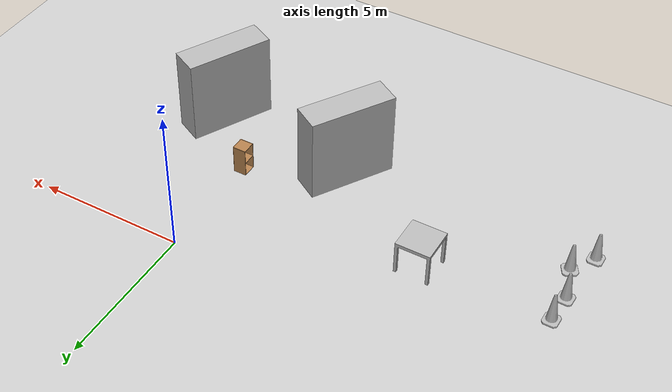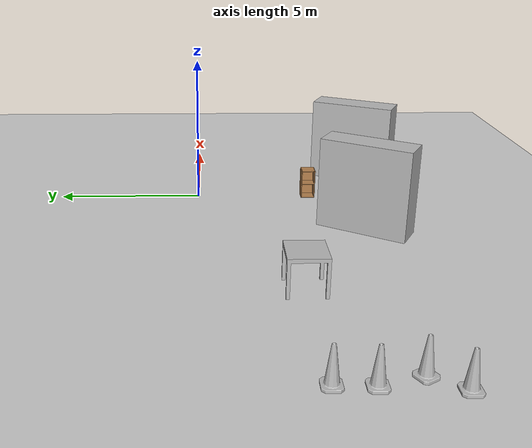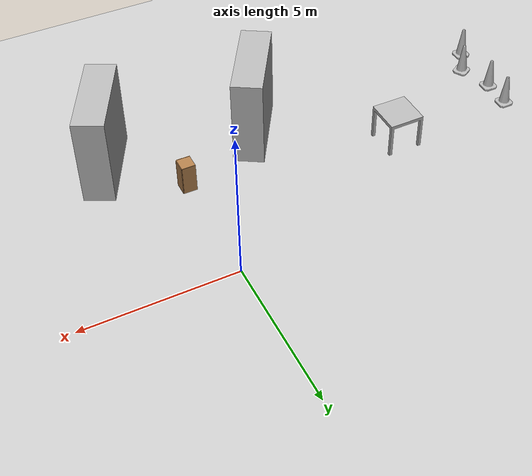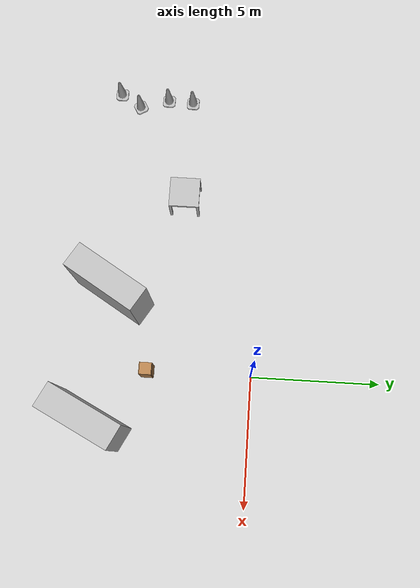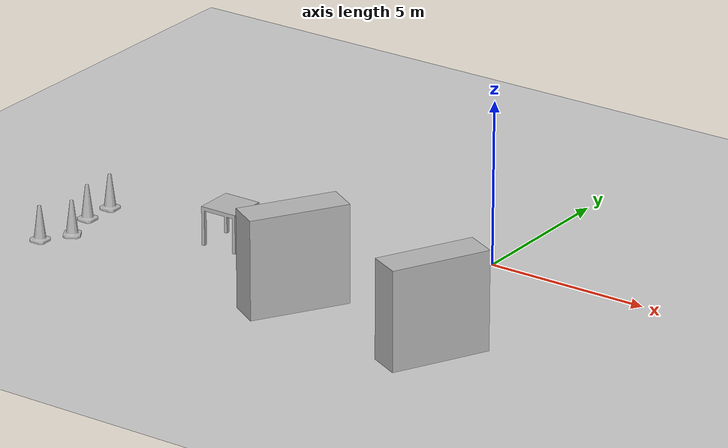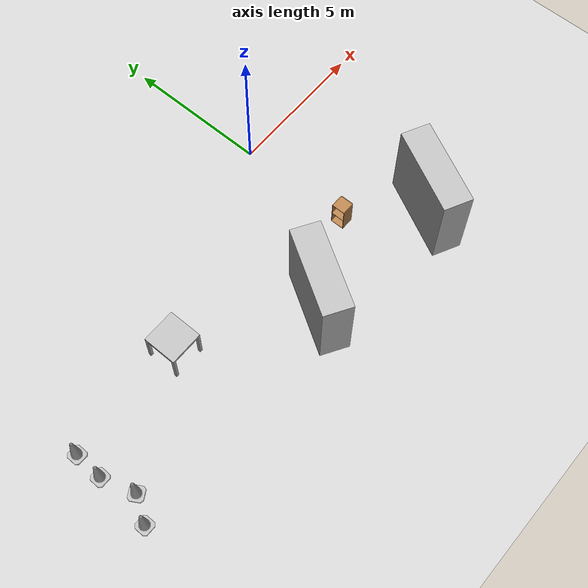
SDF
<sdf version="1.4">
 <world name="default">
  <model name="ground_plane">
   <static>1</static>
   <link name="link">
    <collision name="collision">
     <geometry><plane><normal>0 0 1</normal><size>100 100</size></plane></geometry>
     <surface><friction><ode><mu>100</mu><mu2>50</mu2></ode></friction></surface>
    </collision>
    <visual name="visual">
     <cast_shadows>0</cast_shadows>
     <geometry><plane><normal>0 0 1</normal><size>100 100</size></plane></geometry>
     <material>
      <script><uri>file://media/materials/scripts/gazebo.material</uri><name>Gazebo/Grey</name></script>
     </material>
    </visual>
    <velocity_decay><linear>0</linear><angular>0</angular></velocity_decay>
   </link>
  </model>
  <model name="cabinet">
   <static>1</static>
   <link name="cabinet_bottom_plate">
    <inertial>
     <pose>0 0 -1 0 -0 0</pose>
     <inertia><ixx>2.05</ixx><ixy>0</ixy><ixz>0</ixz><iyy>2.05</iyy><iyz>0</iyz><izz>2.05</izz></inertia>
     <mass>25</mass>
    </inertial>
    <collision name="cabinet_bottom_plate_geom">
     <pose>0 0 0.01 0 -0 0</pose>
     <geometry><box><size>0.45 0.45 0.02</size></box></geometry>
    </collision>
    <visual name="cabinet_bottom_plate_geom_visual">
     <pose>0 0 0.01 0 -0 0</pose>
     <geometry><box><size>0.45 0.45 0.02</size></box></geometry>
     <material>
      <script><uri>file://media/materials/scripts/gazebo.material</uri><name>Gazebo/Wood</name></script>
     </material>
    </visual>
    <collision name="cabinet_bottom_plate_geom_cabinet_back_plate">
     <pose>0.235 0 0.51 0 -0 0</pose>
     <geometry><box><size>0.02 0.45 1.02</size></box></geometry>
    </collision>
    <visual name="cabinet_bottom_plate_geom_cabinet_back_plate_visual">
     <pose>0.235 0 0.51 0 -0 0</pose>
     <geometry><box><size>0.02 0.45 1.02</size></box></geometry>
     <material>
      <script><uri>file://media/materials/scripts/gazebo.material</uri><name>Gazebo/Wood</name></script>
     </material>
    </visual>
    <collision name="cabinet_bottom_plate_geom_cabinet_left_plate">
     <pose>0 0.235 0.51 0 -0 0</pose>
     <geometry><box><size>0.45 0.02 1.02</size></box></geometry>
    </collision>
    <visual name="cabinet_bottom_plate_geom_cabinet_left_plate_visual">
     <pose>0 0.235 0.51 0 -0 0</pose>
     <geometry><box><size>0.45 0.02 1.02</size></box></geometry>
     <material>
      <script><uri>file://media/materials/scripts/gazebo.material</uri><name>Gazebo/Wood</name></script>
     </material>
    </visual>
    <collision name="cabinet_bottom_plate_geom_cabinet_middle_plate">
     <pose>0 0 0.51 0 -0 0</pose>
     <geometry><box><size>0.45 0.45 0.02</size></box></geometry>
    </collision>
    <visual name="cabinet_bottom_plate_geom_cabinet_middle_plate_visual">
     <pose>0 0 0.51 0 -0 0</pose>
     <geometry><box><size>0.45 0.45 0.02</size></box></geometry>
     <material>
      <script><uri>file://media/materials/scripts/gazebo.material</uri><name>Gazebo/Wood</name></script>
     </material>
    </visual>
    <collision name="cabinet_bottom_plate_geom_cabinet_right_plate">
     <pose>0 -0.235 0.51 0 -0 0</pose>
     <geometry><box><size>0.45 0.02 1.02</size></box></geometry>
    </collision>
    <visual name="cabinet_bottom_plate_geom_cabinet_right_plate_visual">
     <pose>0 -0.235 0.51 0 -0 0</pose>
     <geometry><box><size>0.45 0.02 1.02</size></box></geometry>
     <material>
      <script><uri>file://media/materials/scripts/gazebo.material</uri><name>Gazebo/Wood</name></script>
     </material>
    </visual>
    <collision name="cabinet_bottom_plate_geom_cabinet_top_plate">
     <pose>0 0 1.01 0 -0 0</pose>
     <geometry><box><size>0.45 0.45 0.02</size></box></geometry>
    </collision>
    <visual name="cabinet_bottom_plate_geom_cabinet_top_plate_visual">
     <pose>0 0 1.01 0 -0 0</pose>
     <geometry><box><size>0.45 0.45 0.02</size></box></geometry>
     <material>
      <script><uri>file://media/materials/scripts/gazebo.material</uri><name>Gazebo/Wood</name></script>
     </material>
    </visual>
    <velocity_decay><linear>0</linear><angular>0</angular></velocity_decay>
   </link>
   <pose>0 -4 0 0 -0 0</pose>
  </model>
  <model name="nist_elevated_floor_120_1">
   <static>1</static>
   <link name="nist_elevated_floor_120">
    <collision name="collision">
     <geometry>
      <mesh><uri>model://nist_elevated_floor_120/meshes/nist_elevated_floor_120.dae</uri><scale>1 1 1</scale></mesh>
     </geometry>
    </collision>
    <visual name="visual">
     <geometry>
      <mesh><uri>model://nist_elevated_floor_120/meshes/nist_elevated_floor_120.dae</uri><scale>1 1 1</scale></mesh>
     </geometry>
    </visual>
    <velocity_decay><linear>0</linear><angular>0</angular></velocity_decay>
   </link>
   <pose>-7 -3 0 0 -0 0</pose>
  </model>
  <model name="Construction Cone">
   <link name="link">
    <collision name="collision">
     <geometry>
      <mesh><scale>10 10 10</scale><uri>model://construction_cone/meshes/construction_cone.dae</uri></mesh>
     </geometry>
    </collision>
    <visual name="visual">
     <geometry>
      <mesh><scale>10 10 10</scale><uri>model://construction_cone/meshes/construction_cone.dae</uri></mesh>
     </geometry>
    </visual>
    <velocity_decay><linear>0</linear><angular>0</angular></velocity_decay>
    <inertial>
     <inertia><ixx>1</ixx><ixy>0</ixy><ixz>0</ixz><iyy>1</iyy><iyz>0</iyz><izz>1</izz></inertia>
     <mass>1</mass>
    </inertial>
   </link>
   <pose>-11.3372 -3.00615 -0 0 -1e-06 -0.006963</pose>
   <static>0</static>
  </model>
  <model name="Construction Cone_0">
   <link name="link">
    <collision name="collision">
     <geometry>
      <mesh><scale>10 10 10</scale><uri>model://construction_cone/meshes/construction_cone.dae</uri></mesh>
     </geometry>
    </collision>
    <visual name="visual">
     <geometry>
      <mesh><scale>10 10 10</scale><uri>model://construction_cone/meshes/construction_cone.dae</uri></mesh>
     </geometry>
    </visual>
    <velocity_decay><linear>0</linear><angular>0</angular></velocity_decay>
    <inertial>
     <inertia><ixx>1</ixx><ixy>0</ixy><ixz>0</ixz><iyy>1</iyy><iyz>0</iyz><izz>1</izz></inertia>
     <mass>1</mass>
    </inertial>
   </link>
   <pose>-11.3851 -4.01319 -7e-06 0 -1e-06 -0.022477</pose>
   <static>0</static>
  </model>
  <model name="Construction Cone_1">
   <link name="link">
    <collision name="collision">
     <geometry>
      <mesh><scale>10 10 10</scale><uri>model://construction_cone/meshes/construction_cone.dae</uri></mesh>
     </geometry>
    </collision>
    <visual name="visual">
     <geometry>
      <mesh><scale>10 10 10</scale><uri>model://construction_cone/meshes/construction_cone.dae</uri></mesh>
     </geometry>
    </visual>
    <velocity_decay><linear>0</linear><angular>0</angular></velocity_decay>
    <inertial>
     <inertia><ixx>1</ixx><ixy>0</ixy><ixz>0</ixz><iyy>1</iyy><iyz>0</iyz><izz>1</izz></inertia>
     <mass>1</mass>
    </inertial>
   </link>
   <pose>-11.0419 -5.17217 -1e-06 2e-06 -1e-06 -1.04448</pose>
   <static>0</static>
  </model>
  <model name="Construction Cone_2">
   <link name="link">
    <collision name="collision">
     <geometry>
      <mesh><scale>10 10 10</scale><uri>model://construction_cone/meshes/construction_cone.dae</uri></mesh>
     </geometry>
    </collision>
    <visual name="visual">
     <geometry>
      <mesh><scale>10 10 10</scale><uri>model://construction_cone/meshes/construction_cone.dae</uri></mesh>
     </geometry>
    </visual>
    <velocity_decay><linear>0</linear><angular>0</angular></velocity_decay>
    <inertial>
     <inertia><ixx>1</ixx><ixy>0</ixy><ixz>0</ixz><iyy>1</iyy><iyz>0</iyz><izz>1</izz></inertia>
     <mass>1</mass>
    </inertial>
   </link>
   <pose>-11.5642 -6 -9e-06 3e-06 1e-06 -4.03897e-28</pose>
   <static>0</static>
  </model>
  <model name="brick_box_3x1x3_3">
   <static>1</static>
   <link name="chassis">
    <pose>0 0 1.5 0 -0 0</pose>
    <collision name="collision"><geometry><box><size>3 1 3</size></box></geometry></collision>
    <visual name="visual">
     <geometry><mesh><uri>model://brick_box_3x1x3/meshes/simple_box.dae</uri><scale>3 1 3</scale></mesh></geometry>
     <material>
      <script>
       <uri>model://brick_box_3x1x3/materials/scripts</uri>
       <uri>model://brick_box_3x1x3/materials/textures</uri>
       <name>BrickBox/Diffuse</name>
      </script>
     </material>
    </visual>
    <velocity_decay><linear>0</linear><angular>0</angular></velocity_decay>
   </link>
   <pose>-3 -5.49802 -0 0 0 -2.11803</pose>
  </model>
  <model name="brick_box_3x1x3_4">
   <static>1</static>
   <link name="chassis">
    <pose>0 0 1.5 0 -0 0</pose>
    <collision name="collision"><geometry><box><size>3 1 3</size></box></geometry></collision>
    <visual name="visual">
     <geometry><mesh><uri>model://brick_box_3x1x3/meshes/simple_box.dae</uri><scale>3 1 3</scale></mesh></geometry>
     <material>
      <script>
       <uri>model://brick_box_3x1x3/materials/scripts</uri>
       <uri>model://brick_box_3x1x3/materials/textures</uri>
       <name>BrickBox/Diffuse</name>
      </script>
     </material>
    </visual>
    <velocity_decay><linear>0</linear><angular>0</angular></velocity_decay>
   </link>
   <pose>2 -6 0 0 0 -2.03965</pose>
  </model>
 </world>
</sdf>
